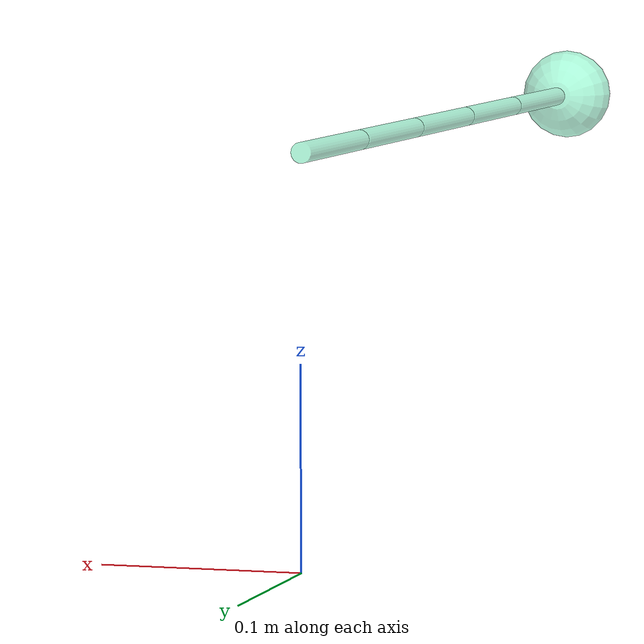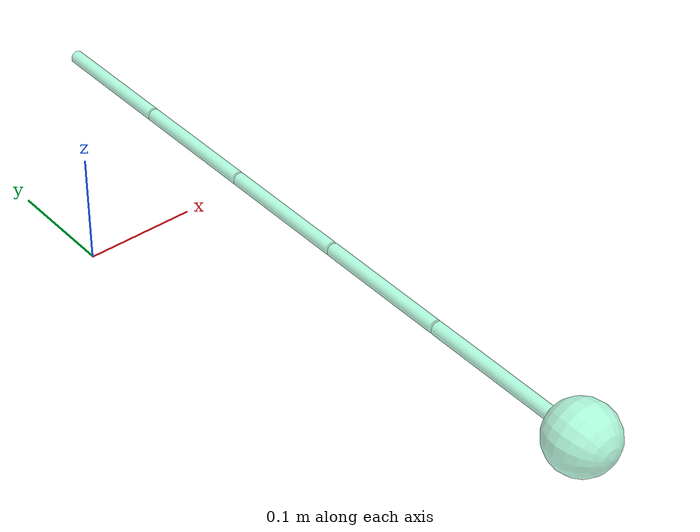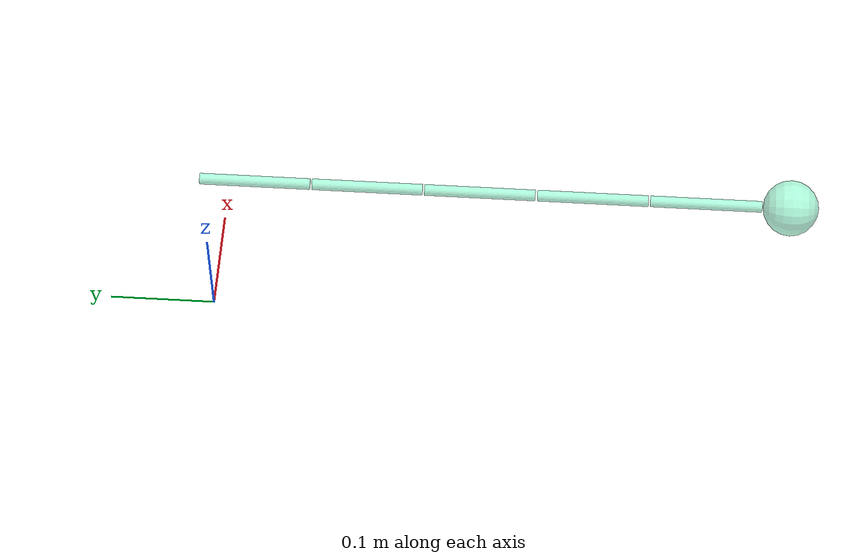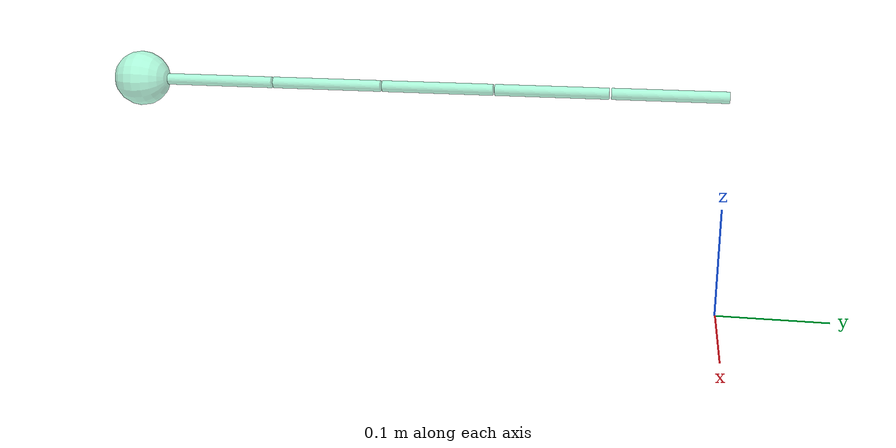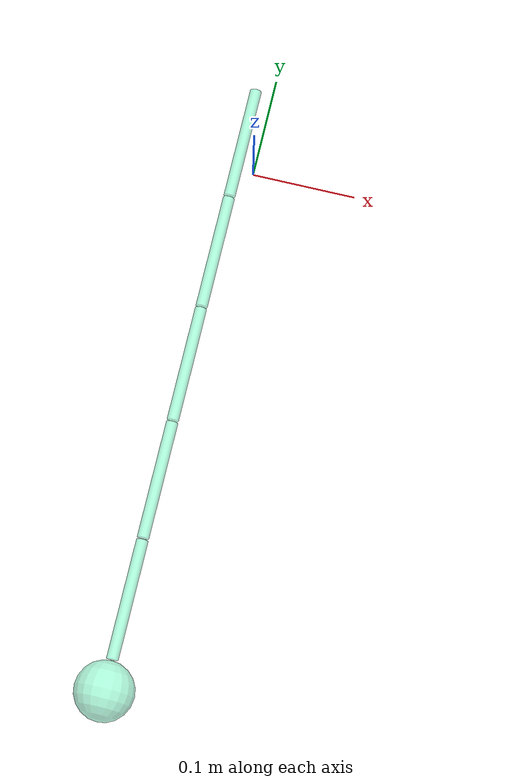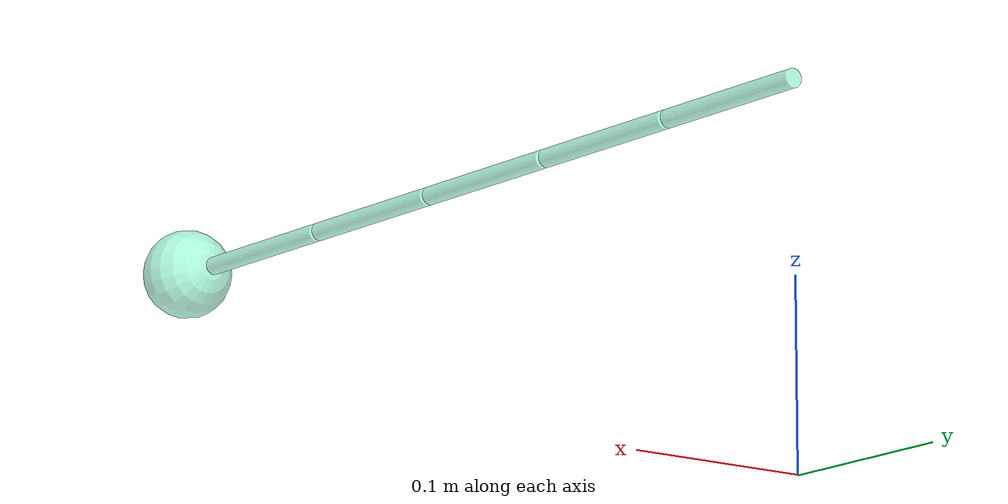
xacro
<?xml version="1.0"?>
<robot xmlns:xacro="http://www.ros.org/wiki/xacro"
       name="mallet" >

  <xacro:macro name="mallet_ball" params="name diameter mass">

    <link name="${name}">
      <inertial>
        <origin xyz="0 0 0" />
        <mass value="${mass}" />
        <inertia  ixx="0.01" ixy="0" ixz="0" iyy="0.01" iyz="0" izz="0.001" />
      </inertial>
      <visual>
        <material name="${name}_material">
          <color rgba="0.5 1.0 0.8 0.6" />
        </material>
        <geometry>
          <sphere radius="${diameter/2}" />
        </geometry>
      </visual>
      <collision>
        <geometry>
          <sphere radius="${diameter/2}" />
        </geometry>
      </collision>
    </link>

    <gazebo reference="${name}">
      <material>Gazebo/DarkRed</material>
      <turnGravityOff>false</turnGravityOff>
      <selfCollide>true</selfCollide>
      <!-- kp: stiffness kd: damping mu1, mu2: friction -->
      <mu1>100.0</mu1>
      <mu2>100.0</mu2>
      <kp>1000000.0</kp>
      <kd>1.0</kd>
    </gazebo>

  </xacro:macro>

  <xacro:macro name="mallet_stick_piece" params="name diameter length mass">
    <link name="${name}">
      <inertial>
        <origin xyz="0 0 ${length/2}" />
        <mass value="${mass}" />
        <inertia  ixx="0.0001" ixy="0" ixz="0" iyy="0.0001" iyz="0" izz="0.00001" />
      </inertial>
      <visual>
        <origin xyz="0 0 ${length/2}" />
        <material name="${name}_material">
          <color rgba="0.5 1.0 0.8 0.6" />
        </material>
        <geometry>
          <cylinder radius="${diameter/2}" length="${length}" />
        </geometry>
      </visual>
      <collision>
        <origin xyz="0 0 ${length/2}" />
        <geometry>
          <cylinder radius="${diameter/2}" length="${length}" />
        </geometry>
      </collision>
    </link>

    <gazebo reference="${name}">
      <material>Gazebo/WoodPallet</material>
      <turnGravityOff>false</turnGravityOff>
      <selfCollide>true</selfCollide>
      <!-- kp: stiffness kd: damping mu1, mu2: friction -->
      <mu1>100.0</mu1>
      <mu2>100.0</mu2>
      <kp>1000000.0</kp>
      <kd>1.0</kd>
    </gazebo>

  </xacro:macro>

  <xacro:macro name="mallet_joint" params="name index piece_length effort lower:=-0.02 upper:=0.02" >

    <joint name="${name}_stick_${index}_joint" type="revolute" >
      <axis xyz="1 0 0" />
      <origin xyz="0 0 ${piece_length+0.002}" rpy="0 0 0" />
      <parent link="${name}_stick_${index}" />
      <child  link="${name}_stick_${index+1}" />
      <limit  lower="${lower}" upper="${upper}" effort="${effort}" velocity="0.1" />
      <dynamics  friction="0.5" damping="0.1" />
    </joint>

    <transmission name="${name}_stick_${index}_joint_transmission">
      <type>transmission_interface/SimpleTransmission</type>
      <actuator name="${name}_stick_${index}_joint}_motor">
        <mechanicalReduction>1.234</mechanicalReduction>
      </actuator>
      <joint name="${name}_stick_${index}_joint">
        <hardwareInterface>hardware_interface/EffortJointInterface</hardwareInterface>
      </joint>
    </transmission>

  </xacro:macro>

  <xacro:macro name="mallet" params="name mass length diameter ball_diameter effort" >

    <link name="${name}" />

    <joint name="${name}_mount_joint" type="fixed" >
      <parent link="${name}" />
      <child  link="${name}_stick_1" />
      <origin xyz="0 0 0" rpy="0 0 0" />
    </joint>

    <xacro:mallet_stick_piece name="${name}_stick_1" diameter="0.01" length="${length/5}" mass="0.05" />
    <xacro:mallet_stick_piece name="${name}_stick_2" diameter="0.01" length="${length/5}" mass="0.05" />
    <xacro:mallet_stick_piece name="${name}_stick_3" diameter="0.01" length="${length/5}" mass="0.05" />
    <xacro:mallet_stick_piece name="${name}_stick_4" diameter="0.01" length="${length/5}" mass="0.05" />
    <xacro:mallet_stick_piece name="${name}_stick_5" diameter="0.01" length="${length/5}" mass="0.05" />

    <xacro:mallet_ball name="${name}_ball" diameter="${ball_diameter}" mass="0.07" />

    <xacro:mallet_joint name="${name}" index="1" piece_length="${length/5}" effort="${effort}" />
    <xacro:mallet_joint name="${name}" index="2" piece_length="${length/5}" effort="${effort}" />
    <xacro:mallet_joint name="${name}" index="3" piece_length="${length/5}" effort="${effort}" />
    <xacro:mallet_joint name="${name}" index="4" piece_length="${length/5}" effort="${effort}" />

    <joint name="${name}_ball_joint" type="fixed" >
      <parent link="${name}_stick_5" />
      <child  link="${name}_ball" />
      <origin xyz="0 0 ${length/5+ball_diameter/2+0.001}" rpy="0 0 0" />
    </joint>

  </xacro:macro>

  <!-- effort 0.1 too weak, 1 ok'ish, 10 explodes -->
  <xacro:mallet name="mallet5"  length="0.5" diameter="0.01" ball_diameter="0.05" mass="0.2" effort="3.0" />

  <link name="world" />

    <joint name="world_mallet5_joint" type="revolute" >
      <axis xyz="1 0 0" />
      <origin xyz="0 0 0.2" rpy="1.571 0 0" />
      <parent link="world" />
      <child  link="mallet5" />
      <limit  lower="-0.2" upper="0.2" effort="25" velocity="0.5" />
      <dynamics  friction="0.01" damping="0.1" />
    </joint>

    <transmission name="world_mallet5_joint_transmission">
      <type>transmission_interface/SimpleTransmission</type>
      <actuator name="world_mallet5_joint_motor">
        <mechanicalReduction>1.234</mechanicalReduction>
      </actuator>
      <joint name="world_mallet5_joint">
        <hardwareInterface>hardware_interface/EffortJointInterface</hardwareInterface>
      </joint>
    </transmission>

  <gazebo>
    <plugin filename="libgazebo_ros_control.so" name="tams_ur5_gazebo_ros_control">
      <robotNamespace>/</robotNamespace>
      <robotSimType>gazebo_ros_control/DefaultRobotHWSim</robotSimType>
      <legacyModeNS>true</legacyModeNS>
      <updateRate>1000.0</updateRate>
    </plugin>
  </gazebo>

</robot>
